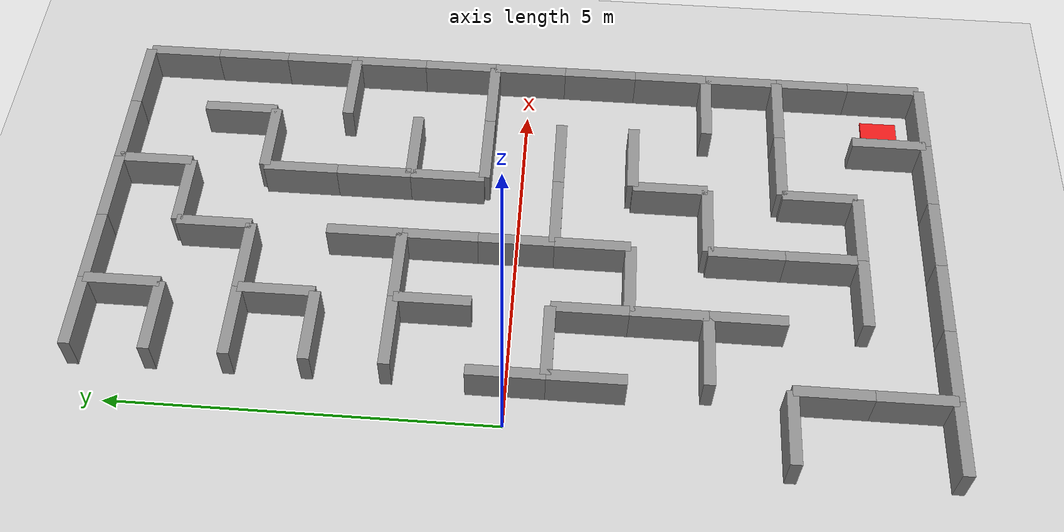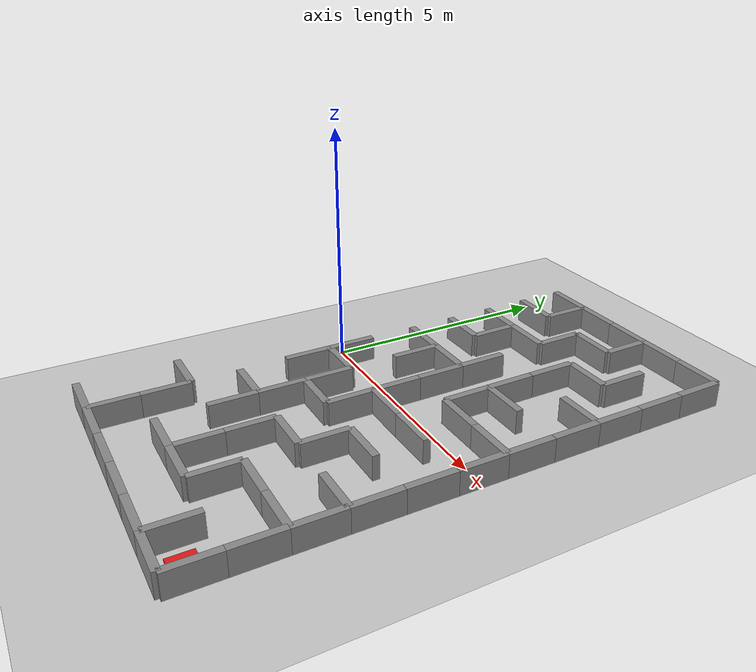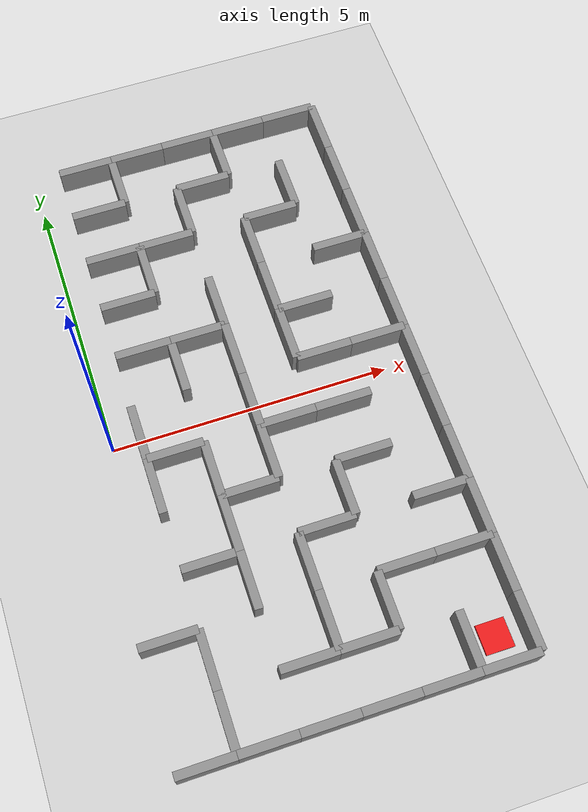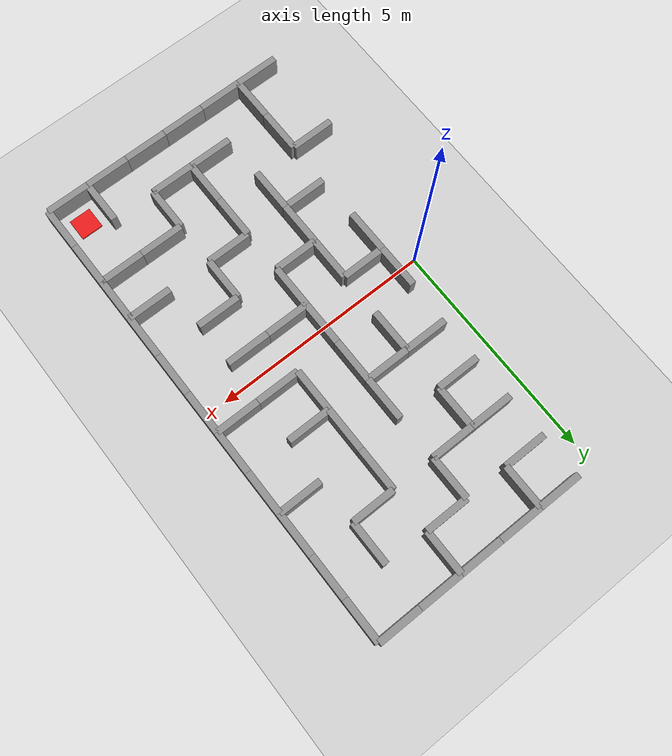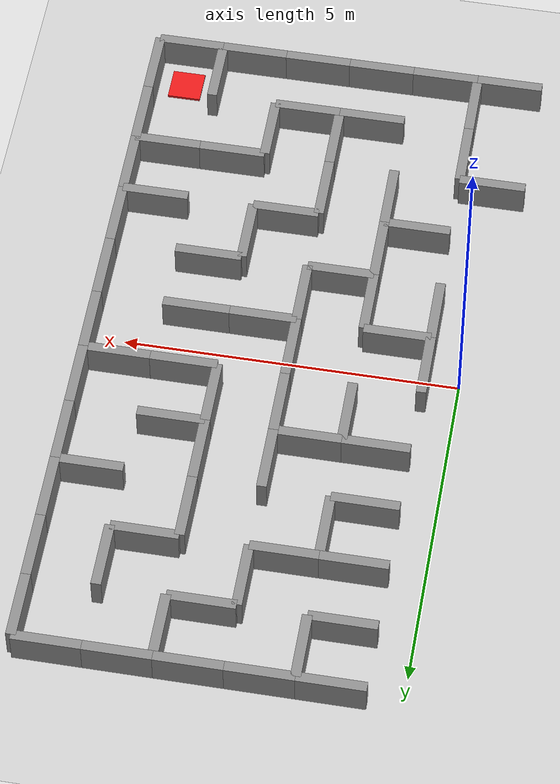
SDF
<sdf version="1.6">
 <world name="maze_world">
  <include><uri>model://ground_plane</uri></include>
  <include><uri>model://sun</uri></include>
  <model name="hw_0_6">
   <static>true</static>
   <pose>1.0000 5.5000 0.2500 0 0 0.0000</pose>
   <link name="link">
    <collision name="col">
     <geometry><box><size>1.0000 0.15 0.5</size></box></geometry>
     <surface><friction><ode><mu>0.8</mu><mu2>0.8</mu2></ode></friction></surface>
    </collision>
    <visual name="vis">
     <geometry><box><size>1.0000 0.15 0.5</size></box></geometry>
     <material><ambient>0.55 0.55 0.55 1</ambient><diffuse>0.55 0.55 0.55 1</diffuse></material>
    </visual>
   </link>
  </model>
  <model name="hw_0_7">
   <static>true</static>
   <pose>2.0000 5.5000 0.2500 0 0 0.0000</pose>
   <link name="link">
    <collision name="col">
     <geometry><box><size>1.0000 0.15 0.5</size></box></geometry>
     <surface><friction><ode><mu>0.8</mu><mu2>0.8</mu2></ode></friction></surface>
    </collision>
    <visual name="vis">
     <geometry><box><size>1.0000 0.15 0.5</size></box></geometry>
     <material><ambient>0.55 0.55 0.55 1</ambient><diffuse>0.55 0.55 0.55 1</diffuse></material>
    </visual>
   </link>
  </model>
  <model name="hw_0_8">
   <static>true</static>
   <pose>3.0000 5.5000 0.2500 0 0 0.0000</pose>
   <link name="link">
    <collision name="col">
     <geometry><box><size>1.0000 0.15 0.5</size></box></geometry>
     <surface><friction><ode><mu>0.8</mu><mu2>0.8</mu2></ode></friction></surface>
    </collision>
    <visual name="vis">
     <geometry><box><size>1.0000 0.15 0.5</size></box></geometry>
     <material><ambient>0.55 0.55 0.55 1</ambient><diffuse>0.55 0.55 0.55 1</diffuse></material>
    </visual>
   </link>
  </model>
  <model name="hw_0_9">
   <static>true</static>
   <pose>4.0000 5.5000 0.2500 0 0 0.0000</pose>
   <link name="link">
    <collision name="col">
     <geometry><box><size>1.0000 0.15 0.5</size></box></geometry>
     <surface><friction><ode><mu>0.8</mu><mu2>0.8</mu2></ode></friction></surface>
    </collision>
    <visual name="vis">
     <geometry><box><size>1.0000 0.15 0.5</size></box></geometry>
     <material><ambient>0.55 0.55 0.55 1</ambient><diffuse>0.55 0.55 0.55 1</diffuse></material>
    </visual>
   </link>
  </model>
  <model name="hw_0_10">
   <static>true</static>
   <pose>5.0000 5.5000 0.2500 0 0 0.0000</pose>
   <link name="link">
    <collision name="col">
     <geometry><box><size>1.0000 0.15 0.5</size></box></geometry>
     <surface><friction><ode><mu>0.8</mu><mu2>0.8</mu2></ode></friction></surface>
    </collision>
    <visual name="vis">
     <geometry><box><size>1.0000 0.15 0.5</size></box></geometry>
     <material><ambient>0.55 0.55 0.55 1</ambient><diffuse>0.55 0.55 0.55 1</diffuse></material>
    </visual>
   </link>
  </model>
  <model name="hw_1_6">
   <static>true</static>
   <pose>1.0000 4.5000 0.2500 0 0 0.0000</pose>
   <link name="link">
    <collision name="col">
     <geometry><box><size>1.0000 0.15 0.5</size></box></geometry>
     <surface><friction><ode><mu>0.8</mu><mu2>0.8</mu2></ode></friction></surface>
    </collision>
    <visual name="vis">
     <geometry><box><size>1.0000 0.15 0.5</size></box></geometry>
     <material><ambient>0.55 0.55 0.55 1</ambient><diffuse>0.55 0.55 0.55 1</diffuse></material>
    </visual>
   </link>
  </model>
  <model name="hw_1_8">
   <static>true</static>
   <pose>3.0000 4.5000 0.2500 0 0 0.0000</pose>
   <link name="link">
    <collision name="col">
     <geometry><box><size>1.0000 0.15 0.5</size></box></geometry>
     <surface><friction><ode><mu>0.8</mu><mu2>0.8</mu2></ode></friction></surface>
    </collision>
    <visual name="vis">
     <geometry><box><size>1.0000 0.15 0.5</size></box></geometry>
     <material><ambient>0.55 0.55 0.55 1</ambient><diffuse>0.55 0.55 0.55 1</diffuse></material>
    </visual>
   </link>
  </model>
  <model name="hw_2_6">
   <static>true</static>
   <pose>1.0000 3.5000 0.2500 0 0 0.0000</pose>
   <link name="link">
    <collision name="col">
     <geometry><box><size>1.0000 0.15 0.5</size></box></geometry>
     <surface><friction><ode><mu>0.8</mu><mu2>0.8</mu2></ode></friction></surface>
    </collision>
    <visual name="vis">
     <geometry><box><size>1.0000 0.15 0.5</size></box></geometry>
     <material><ambient>0.55 0.55 0.55 1</ambient><diffuse>0.55 0.55 0.55 1</diffuse></material>
    </visual>
   </link>
  </model>
  <model name="hw_2_7">
   <static>true</static>
   <pose>2.0000 3.5000 0.2500 0 0 0.0000</pose>
   <link name="link">
    <collision name="col">
     <geometry><box><size>1.0000 0.15 0.5</size></box></geometry>
     <surface><friction><ode><mu>0.8</mu><mu2>0.8</mu2></ode></friction></surface>
    </collision>
    <visual name="vis">
     <geometry><box><size>1.0000 0.15 0.5</size></box></geometry>
     <material><ambient>0.55 0.55 0.55 1</ambient><diffuse>0.55 0.55 0.55 1</diffuse></material>
    </visual>
   </link>
  </model>
  <model name="hw_2_9">
   <static>true</static>
   <pose>4.0000 3.5000 0.2500 0 0 0.0000</pose>
   <link name="link">
    <collision name="col">
     <geometry><box><size>1.0000 0.15 0.5</size></box></geometry>
     <surface><friction><ode><mu>0.8</mu><mu2>0.8</mu2></ode></friction></surface>
    </collision>
    <visual name="vis">
     <geometry><box><size>1.0000 0.15 0.5</size></box></geometry>
     <material><ambient>0.55 0.55 0.55 1</ambient><diffuse>0.55 0.55 0.55 1</diffuse></material>
    </visual>
   </link>
  </model>
  <model name="hw_3_6">
   <static>true</static>
   <pose>1.0000 2.5000 0.2500 0 0 0.0000</pose>
   <link name="link">
    <collision name="col">
     <geometry><box><size>1.0000 0.15 0.5</size></box></geometry>
     <surface><friction><ode><mu>0.8</mu><mu2>0.8</mu2></ode></friction></surface>
    </collision>
    <visual name="vis">
     <geometry><box><size>1.0000 0.15 0.5</size></box></geometry>
     <material><ambient>0.55 0.55 0.55 1</ambient><diffuse>0.55 0.55 0.55 1</diffuse></material>
    </visual>
   </link>
  </model>
  <model name="hw_3_10">
   <static>true</static>
   <pose>5.0000 2.5000 0.2500 0 0 0.0000</pose>
   <link name="link">
    <collision name="col">
     <geometry><box><size>1.0000 0.15 0.5</size></box></geometry>
     <surface><friction><ode><mu>0.8</mu><mu2>0.8</mu2></ode></friction></surface>
    </collision>
    <visual name="vis">
     <geometry><box><size>1.0000 0.15 0.5</size></box></geometry>
     <material><ambient>0.55 0.55 0.55 1</ambient><diffuse>0.55 0.55 0.55 1</diffuse></material>
    </visual>
   </link>
  </model>
  <model name="hw_4_6">
   <static>true</static>
   <pose>1.0000 1.5000 0.2500 0 0 0.0000</pose>
   <link name="link">
    <collision name="col">
     <geometry><box><size>1.0000 0.15 0.5</size></box></geometry>
     <surface><friction><ode><mu>0.8</mu><mu2>0.8</mu2></ode></friction></surface>
    </collision>
    <visual name="vis">
     <geometry><box><size>1.0000 0.15 0.5</size></box></geometry>
     <material><ambient>0.55 0.55 0.55 1</ambient><diffuse>0.55 0.55 0.55 1</diffuse></material>
    </visual>
   </link>
  </model>
  <model name="hw_4_7">
   <static>true</static>
   <pose>2.0000 1.5000 0.2500 0 0 0.0000</pose>
   <link name="link">
    <collision name="col">
     <geometry><box><size>1.0000 0.15 0.5</size></box></geometry>
     <surface><friction><ode><mu>0.8</mu><mu2>0.8</mu2></ode></friction></surface>
    </collision>
    <visual name="vis">
     <geometry><box><size>1.0000 0.15 0.5</size></box></geometry>
     <material><ambient>0.55 0.55 0.55 1</ambient><diffuse>0.55 0.55 0.55 1</diffuse></material>
    </visual>
   </link>
  </model>
  <model name="hw_4_9">
   <static>true</static>
   <pose>4.0000 1.5000 0.2500 0 0 0.0000</pose>
   <link name="link">
    <collision name="col">
     <geometry><box><size>1.0000 0.15 0.5</size></box></geometry>
     <surface><friction><ode><mu>0.8</mu><mu2>0.8</mu2></ode></friction></surface>
    </collision>
    <visual name="vis">
     <geometry><box><size>1.0000 0.15 0.5</size></box></geometry>
     <material><ambient>0.55 0.55 0.55 1</ambient><diffuse>0.55 0.55 0.55 1</diffuse></material>
    </visual>
   </link>
  </model>
  <model name="hw_5_9">
   <static>true</static>
   <pose>4.0000 0.5000 0.2500 0 0 0.0000</pose>
   <link name="link">
    <collision name="col">
     <geometry><box><size>1.0000 0.15 0.5</size></box></geometry>
     <surface><friction><ode><mu>0.8</mu><mu2>0.8</mu2></ode></friction></surface>
    </collision>
    <visual name="vis">
     <geometry><box><size>1.0000 0.15 0.5</size></box></geometry>
     <material><ambient>0.55 0.55 0.55 1</ambient><diffuse>0.55 0.55 0.55 1</diffuse></material>
    </visual>
   </link>
  </model>
  <model name="hw_5_10">
   <static>true</static>
   <pose>5.0000 0.5000 0.2500 0 0 0.0000</pose>
   <link name="link">
    <collision name="col">
     <geometry><box><size>1.0000 0.15 0.5</size></box></geometry>
     <surface><friction><ode><mu>0.8</mu><mu2>0.8</mu2></ode></friction></surface>
    </collision>
    <visual name="vis">
     <geometry><box><size>1.0000 0.15 0.5</size></box></geometry>
     <material><ambient>0.55 0.55 0.55 1</ambient><diffuse>0.55 0.55 0.55 1</diffuse></material>
    </visual>
   </link>
  </model>
  <model name="hw_6_6">
   <static>true</static>
   <pose>1.0000 -0.5000 0.2500 0 0 0.0000</pose>
   <link name="link">
    <collision name="col">
     <geometry><box><size>1.0000 0.15 0.5</size></box></geometry>
     <surface><friction><ode><mu>0.8</mu><mu2>0.8</mu2></ode></friction></surface>
    </collision>
    <visual name="vis">
     <geometry><box><size>1.0000 0.15 0.5</size></box></geometry>
     <material><ambient>0.55 0.55 0.55 1</ambient><diffuse>0.55 0.55 0.55 1</diffuse></material>
    </visual>
   </link>
  </model>
  <model name="hw_6_8">
   <static>true</static>
   <pose>3.0000 -0.5000 0.2500 0 0 0.0000</pose>
   <link name="link">
    <collision name="col">
     <geometry><box><size>1.0000 0.15 0.5</size></box></geometry>
     <surface><friction><ode><mu>0.8</mu><mu2>0.8</mu2></ode></friction></surface>
    </collision>
    <visual name="vis">
     <geometry><box><size>1.0000 0.15 0.5</size></box></geometry>
     <material><ambient>0.55 0.55 0.55 1</ambient><diffuse>0.55 0.55 0.55 1</diffuse></material>
    </visual>
   </link>
  </model>
  <model name="hw_6_9">
   <static>true</static>
   <pose>4.0000 -0.5000 0.2500 0 0 0.0000</pose>
   <link name="link">
    <collision name="col">
     <geometry><box><size>1.0000 0.15 0.5</size></box></geometry>
     <surface><friction><ode><mu>0.8</mu><mu2>0.8</mu2></ode></friction></surface>
    </collision>
    <visual name="vis">
     <geometry><box><size>1.0000 0.15 0.5</size></box></geometry>
     <material><ambient>0.55 0.55 0.55 1</ambient><diffuse>0.55 0.55 0.55 1</diffuse></material>
    </visual>
   </link>
  </model>
  <model name="hw_7_7">
   <static>true</static>
   <pose>2.0000 -1.5000 0.2500 0 0 0.0000</pose>
   <link name="link">
    <collision name="col">
     <geometry><box><size>1.0000 0.15 0.5</size></box></geometry>
     <surface><friction><ode><mu>0.8</mu><mu2>0.8</mu2></ode></friction></surface>
    </collision>
    <visual name="vis">
     <geometry><box><size>1.0000 0.15 0.5</size></box></geometry>
     <material><ambient>0.55 0.55 0.55 1</ambient><diffuse>0.55 0.55 0.55 1</diffuse></material>
    </visual>
   </link>
  </model>
  <model name="hw_7_9">
   <static>true</static>
   <pose>4.0000 -1.5000 0.2500 0 0 0.0000</pose>
   <link name="link">
    <collision name="col">
     <geometry><box><size>1.0000 0.15 0.5</size></box></geometry>
     <surface><friction><ode><mu>0.8</mu><mu2>0.8</mu2></ode></friction></surface>
    </collision>
    <visual name="vis">
     <geometry><box><size>1.0000 0.15 0.5</size></box></geometry>
     <material><ambient>0.55 0.55 0.55 1</ambient><diffuse>0.55 0.55 0.55 1</diffuse></material>
    </visual>
   </link>
  </model>
  <model name="hw_8_6">
   <static>true</static>
   <pose>1.0000 -2.5000 0.2500 0 0 0.0000</pose>
   <link name="link">
    <collision name="col">
     <geometry><box><size>1.0000 0.15 0.5</size></box></geometry>
     <surface><friction><ode><mu>0.8</mu><mu2>0.8</mu2></ode></friction></surface>
    </collision>
    <visual name="vis">
     <geometry><box><size>1.0000 0.15 0.5</size></box></geometry>
     <material><ambient>0.55 0.55 0.55 1</ambient><diffuse>0.55 0.55 0.55 1</diffuse></material>
    </visual>
   </link>
  </model>
  <model name="hw_8_8">
   <static>true</static>
   <pose>3.0000 -2.5000 0.2500 0 0 0.0000</pose>
   <link name="link">
    <collision name="col">
     <geometry><box><size>1.0000 0.15 0.5</size></box></geometry>
     <surface><friction><ode><mu>0.8</mu><mu2>0.8</mu2></ode></friction></surface>
    </collision>
    <visual name="vis">
     <geometry><box><size>1.0000 0.15 0.5</size></box></geometry>
     <material><ambient>0.55 0.55 0.55 1</ambient><diffuse>0.55 0.55 0.55 1</diffuse></material>
    </visual>
   </link>
  </model>
  <model name="hw_8_10">
   <static>true</static>
   <pose>5.0000 -2.5000 0.2500 0 0 0.0000</pose>
   <link name="link">
    <collision name="col">
     <geometry><box><size>1.0000 0.15 0.5</size></box></geometry>
     <surface><friction><ode><mu>0.8</mu><mu2>0.8</mu2></ode></friction></surface>
    </collision>
    <visual name="vis">
     <geometry><box><size>1.0000 0.15 0.5</size></box></geometry>
     <material><ambient>0.55 0.55 0.55 1</ambient><diffuse>0.55 0.55 0.55 1</diffuse></material>
    </visual>
   </link>
  </model>
  <model name="hw_9_5">
   <static>true</static>
   <pose>0.0000 -3.5000 0.2500 0 0 0.0000</pose>
   <link name="link">
    <collision name="col">
     <geometry><box><size>1.0000 0.15 0.5</size></box></geometry>
     <surface><friction><ode><mu>0.8</mu><mu2>0.8</mu2></ode></friction></surface>
    </collision>
    <visual name="vis">
     <geometry><box><size>1.0000 0.15 0.5</size></box></geometry>
     <material><ambient>0.55 0.55 0.55 1</ambient><diffuse>0.55 0.55 0.55 1</diffuse></material>
    </visual>
   </link>
  </model>
  <model name="hw_9_9">
   <static>true</static>
   <pose>4.0000 -3.5000 0.2500 0 0 0.0000</pose>
   <link name="link">
    <collision name="col">
     <geometry><box><size>1.0000 0.15 0.5</size></box></geometry>
     <surface><friction><ode><mu>0.8</mu><mu2>0.8</mu2></ode></friction></surface>
    </collision>
    <visual name="vis">
     <geometry><box><size>1.0000 0.15 0.5</size></box></geometry>
     <material><ambient>0.55 0.55 0.55 1</ambient><diffuse>0.55 0.55 0.55 1</diffuse></material>
    </visual>
   </link>
  </model>
  <model name="hw_9_10">
   <static>true</static>
   <pose>5.0000 -3.5000 0.2500 0 0 0.0000</pose>
   <link name="link">
    <collision name="col">
     <geometry><box><size>1.0000 0.15 0.5</size></box></geometry>
     <surface><friction><ode><mu>0.8</mu><mu2>0.8</mu2></ode></friction></surface>
    </collision>
    <visual name="vis">
     <geometry><box><size>1.0000 0.15 0.5</size></box></geometry>
     <material><ambient>0.55 0.55 0.55 1</ambient><diffuse>0.55 0.55 0.55 1</diffuse></material>
    </visual>
   </link>
  </model>
  <model name="hw_10_7">
   <static>true</static>
   <pose>2.0000 -4.5000 0.2500 0 0 0.0000</pose>
   <link name="link">
    <collision name="col">
     <geometry><box><size>1.0000 0.15 0.5</size></box></geometry>
     <surface><friction><ode><mu>0.8</mu><mu2>0.8</mu2></ode></friction></surface>
    </collision>
    <visual name="vis">
     <geometry><box><size>1.0000 0.15 0.5</size></box></geometry>
     <material><ambient>0.55 0.55 0.55 1</ambient><diffuse>0.55 0.55 0.55 1</diffuse></material>
    </visual>
   </link>
  </model>
  <model name="hw_10_8">
   <static>true</static>
   <pose>3.0000 -4.5000 0.2500 0 0 0.0000</pose>
   <link name="link">
    <collision name="col">
     <geometry><box><size>1.0000 0.15 0.5</size></box></geometry>
     <surface><friction><ode><mu>0.8</mu><mu2>0.8</mu2></ode></friction></surface>
    </collision>
    <visual name="vis">
     <geometry><box><size>1.0000 0.15 0.5</size></box></geometry>
     <material><ambient>0.55 0.55 0.55 1</ambient><diffuse>0.55 0.55 0.55 1</diffuse></material>
    </visual>
   </link>
  </model>
  <model name="hw_11_5">
   <static>true</static>
   <pose>0.0000 -5.5000 0.2500 0 0 0.0000</pose>
   <link name="link">
    <collision name="col">
     <geometry><box><size>1.0000 0.15 0.5</size></box></geometry>
     <surface><friction><ode><mu>0.8</mu><mu2>0.8</mu2></ode></friction></surface>
    </collision>
    <visual name="vis">
     <geometry><box><size>1.0000 0.15 0.5</size></box></geometry>
     <material><ambient>0.55 0.55 0.55 1</ambient><diffuse>0.55 0.55 0.55 1</diffuse></material>
    </visual>
   </link>
  </model>
  <model name="hw_11_6">
   <static>true</static>
   <pose>1.0000 -5.5000 0.2500 0 0 0.0000</pose>
   <link name="link">
    <collision name="col">
     <geometry><box><size>1.0000 0.15 0.5</size></box></geometry>
     <surface><friction><ode><mu>0.8</mu><mu2>0.8</mu2></ode></friction></surface>
    </collision>
    <visual name="vis">
     <geometry><box><size>1.0000 0.15 0.5</size></box></geometry>
     <material><ambient>0.55 0.55 0.55 1</ambient><diffuse>0.55 0.55 0.55 1</diffuse></material>
    </visual>
   </link>
  </model>
  <model name="hw_11_7">
   <static>true</static>
   <pose>2.0000 -5.5000 0.2500 0 0 0.0000</pose>
   <link name="link">
    <collision name="col">
     <geometry><box><size>1.0000 0.15 0.5</size></box></geometry>
     <surface><friction><ode><mu>0.8</mu><mu2>0.8</mu2></ode></friction></surface>
    </collision>
    <visual name="vis">
     <geometry><box><size>1.0000 0.15 0.5</size></box></geometry>
     <material><ambient>0.55 0.55 0.55 1</ambient><diffuse>0.55 0.55 0.55 1</diffuse></material>
    </visual>
   </link>
  </model>
  <model name="hw_11_8">
   <static>true</static>
   <pose>3.0000 -5.5000 0.2500 0 0 0.0000</pose>
   <link name="link">
    <collision name="col">
     <geometry><box><size>1.0000 0.15 0.5</size></box></geometry>
     <surface><friction><ode><mu>0.8</mu><mu2>0.8</mu2></ode></friction></surface>
    </collision>
    <visual name="vis">
     <geometry><box><size>1.0000 0.15 0.5</size></box></geometry>
     <material><ambient>0.55 0.55 0.55 1</ambient><diffuse>0.55 0.55 0.55 1</diffuse></material>
    </visual>
   </link>
  </model>
  <model name="hw_11_9">
   <static>true</static>
   <pose>4.0000 -5.5000 0.2500 0 0 0.0000</pose>
   <link name="link">
    <collision name="col">
     <geometry><box><size>1.0000 0.15 0.5</size></box></geometry>
     <surface><friction><ode><mu>0.8</mu><mu2>0.8</mu2></ode></friction></surface>
    </collision>
    <visual name="vis">
     <geometry><box><size>1.0000 0.15 0.5</size></box></geometry>
     <material><ambient>0.55 0.55 0.55 1</ambient><diffuse>0.55 0.55 0.55 1</diffuse></material>
    </visual>
   </link>
  </model>
  <model name="hw_11_10">
   <static>true</static>
   <pose>5.0000 -5.5000 0.2500 0 0 0.0000</pose>
   <link name="link">
    <collision name="col">
     <geometry><box><size>1.0000 0.15 0.5</size></box></geometry>
     <surface><friction><ode><mu>0.8</mu><mu2>0.8</mu2></ode></friction></surface>
    </collision>
    <visual name="vis">
     <geometry><box><size>1.0000 0.15 0.5</size></box></geometry>
     <material><ambient>0.55 0.55 0.55 1</ambient><diffuse>0.55 0.55 0.55 1</diffuse></material>
    </visual>
   </link>
  </model>
  <model name="vw_6_5">
   <static>true</static>
   <pose>0.5000 0.0000 0.2500 0 0 1.5708</pose>
   <link name="link">
    <collision name="col">
     <geometry><box><size>1.0000 0.15 0.5</size></box></geometry>
     <surface><friction><ode><mu>0.8</mu><mu2>0.8</mu2></ode></friction></surface>
    </collision>
    <visual name="vis">
     <geometry><box><size>1.0000 0.15 0.5</size></box></geometry>
     <material><ambient>0.55 0.55 0.55 1</ambient><diffuse>0.55 0.55 0.55 1</diffuse></material>
    </visual>
   </link>
  </model>
  <model name="vw_6_6">
   <static>true</static>
   <pose>0.5000 -1.0000 0.2500 0 0 1.5708</pose>
   <link name="link">
    <collision name="col">
     <geometry><box><size>1.0000 0.15 0.5</size></box></geometry>
     <surface><friction><ode><mu>0.8</mu><mu2>0.8</mu2></ode></friction></surface>
    </collision>
    <visual name="vis">
     <geometry><box><size>1.0000 0.15 0.5</size></box></geometry>
     <material><ambient>0.55 0.55 0.55 1</ambient><diffuse>0.55 0.55 0.55 1</diffuse></material>
    </visual>
   </link>
  </model>
  <model name="vw_6_9">
   <static>true</static>
   <pose>0.5000 -4.0000 0.2500 0 0 1.5708</pose>
   <link name="link">
    <collision name="col">
     <geometry><box><size>1.0000 0.15 0.5</size></box></geometry>
     <surface><friction><ode><mu>0.8</mu><mu2>0.8</mu2></ode></friction></surface>
    </collision>
    <visual name="vis">
     <geometry><box><size>1.0000 0.15 0.5</size></box></geometry>
     <material><ambient>0.55 0.55 0.55 1</ambient><diffuse>0.55 0.55 0.55 1</diffuse></material>
    </visual>
   </link>
  </model>
  <model name="vw_6_10">
   <static>true</static>
   <pose>0.5000 -5.0000 0.2500 0 0 1.5708</pose>
   <link name="link">
    <collision name="col">
     <geometry><box><size>1.0000 0.15 0.5</size></box></geometry>
     <surface><friction><ode><mu>0.8</mu><mu2>0.8</mu2></ode></friction></surface>
    </collision>
    <visual name="vis">
     <geometry><box><size>1.0000 0.15 0.5</size></box></geometry>
     <material><ambient>0.55 0.55 0.55 1</ambient><diffuse>0.55 0.55 0.55 1</diffuse></material>
    </visual>
   </link>
  </model>
  <model name="vw_7_0">
   <static>true</static>
   <pose>1.5000 5.0000 0.2500 0 0 1.5708</pose>
   <link name="link">
    <collision name="col">
     <geometry><box><size>1.0000 0.15 0.5</size></box></geometry>
     <surface><friction><ode><mu>0.8</mu><mu2>0.8</mu2></ode></friction></surface>
    </collision>
    <visual name="vis">
     <geometry><box><size>1.0000 0.15 0.5</size></box></geometry>
     <material><ambient>0.55 0.55 0.55 1</ambient><diffuse>0.55 0.55 0.55 1</diffuse></material>
    </visual>
   </link>
  </model>
  <model name="vw_7_2">
   <static>true</static>
   <pose>1.5000 3.0000 0.2500 0 0 1.5708</pose>
   <link name="link">
    <collision name="col">
     <geometry><box><size>1.0000 0.15 0.5</size></box></geometry>
     <surface><friction><ode><mu>0.8</mu><mu2>0.8</mu2></ode></friction></surface>
    </collision>
    <visual name="vis">
     <geometry><box><size>1.0000 0.15 0.5</size></box></geometry>
     <material><ambient>0.55 0.55 0.55 1</ambient><diffuse>0.55 0.55 0.55 1</diffuse></material>
    </visual>
   </link>
  </model>
  <model name="vw_7_4">
   <static>true</static>
   <pose>1.5000 1.0000 0.2500 0 0 1.5708</pose>
   <link name="link">
    <collision name="col">
     <geometry><box><size>1.0000 0.15 0.5</size></box></geometry>
     <surface><friction><ode><mu>0.8</mu><mu2>0.8</mu2></ode></friction></surface>
    </collision>
    <visual name="vis">
     <geometry><box><size>1.0000 0.15 0.5</size></box></geometry>
     <material><ambient>0.55 0.55 0.55 1</ambient><diffuse>0.55 0.55 0.55 1</diffuse></material>
    </visual>
   </link>
  </model>
  <model name="vw_7_6">
   <static>true</static>
   <pose>1.5000 -1.0000 0.2500 0 0 1.5708</pose>
   <link name="link">
    <collision name="col">
     <geometry><box><size>1.0000 0.15 0.5</size></box></geometry>
     <surface><friction><ode><mu>0.8</mu><mu2>0.8</mu2></ode></friction></surface>
    </collision>
    <visual name="vis">
     <geometry><box><size>1.0000 0.15 0.5</size></box></geometry>
     <material><ambient>0.55 0.55 0.55 1</ambient><diffuse>0.55 0.55 0.55 1</diffuse></material>
    </visual>
   </link>
  </model>
  <model name="vw_7_7">
   <static>true</static>
   <pose>1.5000 -2.0000 0.2500 0 0 1.5708</pose>
   <link name="link">
    <collision name="col">
     <geometry><box><size>1.0000 0.15 0.5</size></box></geometry>
     <surface><friction><ode><mu>0.8</mu><mu2>0.8</mu2></ode></friction></surface>
    </collision>
    <visual name="vis">
     <geometry><box><size>1.0000 0.15 0.5</size></box></geometry>
     <material><ambient>0.55 0.55 0.55 1</ambient><diffuse>0.55 0.55 0.55 1</diffuse></material>
    </visual>
   </link>
  </model>
  <model name="vw_7_8">
   <static>true</static>
   <pose>1.5000 -3.0000 0.2500 0 0 1.5708</pose>
   <link name="link">
    <collision name="col">
     <geometry><box><size>1.0000 0.15 0.5</size></box></geometry>
     <surface><friction><ode><mu>0.8</mu><mu2>0.8</mu2></ode></friction></surface>
    </collision>
    <visual name="vis">
     <geometry><box><size>1.0000 0.15 0.5</size></box></geometry>
     <material><ambient>0.55 0.55 0.55 1</ambient><diffuse>0.55 0.55 0.55 1</diffuse></material>
    </visual>
   </link>
  </model>
  <model name="vw_8_1">
   <static>true</static>
   <pose>2.5000 4.0000 0.2500 0 0 1.5708</pose>
   <link name="link">
    <collision name="col">
     <geometry><box><size>1.0000 0.15 0.5</size></box></geometry>
     <surface><friction><ode><mu>0.8</mu><mu2>0.8</mu2></ode></friction></surface>
    </collision>
    <visual name="vis">
     <geometry><box><size>1.0000 0.15 0.5</size></box></geometry>
     <material><ambient>0.55 0.55 0.55 1</ambient><diffuse>0.55 0.55 0.55 1</diffuse></material>
    </visual>
   </link>
  </model>
  <model name="vw_8_3">
   <static>true</static>
   <pose>2.5000 2.0000 0.2500 0 0 1.5708</pose>
   <link name="link">
    <collision name="col">
     <geometry><box><size>1.0000 0.15 0.5</size></box></geometry>
     <surface><friction><ode><mu>0.8</mu><mu2>0.8</mu2></ode></friction></surface>
    </collision>
    <visual name="vis">
     <geometry><box><size>1.0000 0.15 0.5</size></box></geometry>
     <material><ambient>0.55 0.55 0.55 1</ambient><diffuse>0.55 0.55 0.55 1</diffuse></material>
    </visual>
   </link>
  </model>
  <model name="vw_8_4">
   <static>true</static>
   <pose>2.5000 1.0000 0.2500 0 0 1.5708</pose>
   <link name="link">
    <collision name="col">
     <geometry><box><size>1.0000 0.15 0.5</size></box></geometry>
     <surface><friction><ode><mu>0.8</mu><mu2>0.8</mu2></ode></friction></surface>
    </collision>
    <visual name="vis">
     <geometry><box><size>1.0000 0.15 0.5</size></box></geometry>
     <material><ambient>0.55 0.55 0.55 1</ambient><diffuse>0.55 0.55 0.55 1</diffuse></material>
    </visual>
   </link>
  </model>
  <model name="vw_8_5">
   <static>true</static>
   <pose>2.5000 0.0000 0.2500 0 0 1.5708</pose>
   <link name="link">
    <collision name="col">
     <geometry><box><size>1.0000 0.15 0.5</size></box></geometry>
     <surface><friction><ode><mu>0.8</mu><mu2>0.8</mu2></ode></friction></surface>
    </collision>
    <visual name="vis">
     <geometry><box><size>1.0000 0.15 0.5</size></box></geometry>
     <material><ambient>0.55 0.55 0.55 1</ambient><diffuse>0.55 0.55 0.55 1</diffuse></material>
    </visual>
   </link>
  </model>
  <model name="vw_8_6">
   <static>true</static>
   <pose>2.5000 -1.0000 0.2500 0 0 1.5708</pose>
   <link name="link">
    <collision name="col">
     <geometry><box><size>1.0000 0.15 0.5</size></box></geometry>
     <surface><friction><ode><mu>0.8</mu><mu2>0.8</mu2></ode></friction></surface>
    </collision>
    <visual name="vis">
     <geometry><box><size>1.0000 0.15 0.5</size></box></geometry>
     <material><ambient>0.55 0.55 0.55 1</ambient><diffuse>0.55 0.55 0.55 1</diffuse></material>
    </visual>
   </link>
  </model>
  <model name="vw_8_8">
   <static>true</static>
   <pose>2.5000 -3.0000 0.2500 0 0 1.5708</pose>
   <link name="link">
    <collision name="col">
     <geometry><box><size>1.0000 0.15 0.5</size></box></geometry>
     <surface><friction><ode><mu>0.8</mu><mu2>0.8</mu2></ode></friction></surface>
    </collision>
    <visual name="vis">
     <geometry><box><size>1.0000 0.15 0.5</size></box></geometry>
     <material><ambient>0.55 0.55 0.55 1</ambient><diffuse>0.55 0.55 0.55 1</diffuse></material>
    </visual>
   </link>
  </model>
  <model name="vw_8_9">
   <static>true</static>
   <pose>2.5000 -4.0000 0.2500 0 0 1.5708</pose>
   <link name="link">
    <collision name="col">
     <geometry><box><size>1.0000 0.15 0.5</size></box></geometry>
     <surface><friction><ode><mu>0.8</mu><mu2>0.8</mu2></ode></friction></surface>
    </collision>
    <visual name="vis">
     <geometry><box><size>1.0000 0.15 0.5</size></box></geometry>
     <material><ambient>0.55 0.55 0.55 1</ambient><diffuse>0.55 0.55 0.55 1</diffuse></material>
    </visual>
   </link>
  </model>
  <model name="vw_9_0">
   <static>true</static>
   <pose>3.5000 5.0000 0.2500 0 0 1.5708</pose>
   <link name="link">
    <collision name="col">
     <geometry><box><size>1.0000 0.15 0.5</size></box></geometry>
     <surface><friction><ode><mu>0.8</mu><mu2>0.8</mu2></ode></friction></surface>
    </collision>
    <visual name="vis">
     <geometry><box><size>1.0000 0.15 0.5</size></box></geometry>
     <material><ambient>0.55 0.55 0.55 1</ambient><diffuse>0.55 0.55 0.55 1</diffuse></material>
    </visual>
   </link>
  </model>
  <model name="vw_9_2">
   <static>true</static>
   <pose>3.5000 3.0000 0.2500 0 0 1.5708</pose>
   <link name="link">
    <collision name="col">
     <geometry><box><size>1.0000 0.15 0.5</size></box></geometry>
     <surface><friction><ode><mu>0.8</mu><mu2>0.8</mu2></ode></friction></surface>
    </collision>
    <visual name="vis">
     <geometry><box><size>1.0000 0.15 0.5</size></box></geometry>
     <material><ambient>0.55 0.55 0.55 1</ambient><diffuse>0.55 0.55 0.55 1</diffuse></material>
    </visual>
   </link>
  </model>
  <model name="vw_9_3">
   <static>true</static>
   <pose>3.5000 2.0000 0.2500 0 0 1.5708</pose>
   <link name="link">
    <collision name="col">
     <geometry><box><size>1.0000 0.15 0.5</size></box></geometry>
     <surface><friction><ode><mu>0.8</mu><mu2>0.8</mu2></ode></friction></surface>
    </collision>
    <visual name="vis">
     <geometry><box><size>1.0000 0.15 0.5</size></box></geometry>
     <material><ambient>0.55 0.55 0.55 1</ambient><diffuse>0.55 0.55 0.55 1</diffuse></material>
    </visual>
   </link>
  </model>
  <model name="vw_9_4">
   <static>true</static>
   <pose>3.5000 1.0000 0.2500 0 0 1.5708</pose>
   <link name="link">
    <collision name="col">
     <geometry><box><size>1.0000 0.15 0.5</size></box></geometry>
     <surface><friction><ode><mu>0.8</mu><mu2>0.8</mu2></ode></friction></surface>
    </collision>
    <visual name="vis">
     <geometry><box><size>1.0000 0.15 0.5</size></box></geometry>
     <material><ambient>0.55 0.55 0.55 1</ambient><diffuse>0.55 0.55 0.55 1</diffuse></material>
    </visual>
   </link>
  </model>
  <model name="vw_9_7">
   <static>true</static>
   <pose>3.5000 -2.0000 0.2500 0 0 1.5708</pose>
   <link name="link">
    <collision name="col">
     <geometry><box><size>1.0000 0.15 0.5</size></box></geometry>
     <surface><friction><ode><mu>0.8</mu><mu2>0.8</mu2></ode></friction></surface>
    </collision>
    <visual name="vis">
     <geometry><box><size>1.0000 0.15 0.5</size></box></geometry>
     <material><ambient>0.55 0.55 0.55 1</ambient><diffuse>0.55 0.55 0.55 1</diffuse></material>
    </visual>
   </link>
  </model>
  <model name="vw_9_9">
   <static>true</static>
   <pose>3.5000 -4.0000 0.2500 0 0 1.5708</pose>
   <link name="link">
    <collision name="col">
     <geometry><box><size>1.0000 0.15 0.5</size></box></geometry>
     <surface><friction><ode><mu>0.8</mu><mu2>0.8</mu2></ode></friction></surface>
    </collision>
    <visual name="vis">
     <geometry><box><size>1.0000 0.15 0.5</size></box></geometry>
     <material><ambient>0.55 0.55 0.55 1</ambient><diffuse>0.55 0.55 0.55 1</diffuse></material>
    </visual>
   </link>
  </model>
  <model name="vw_10_1">
   <static>true</static>
   <pose>4.5000 4.0000 0.2500 0 0 1.5708</pose>
   <link name="link">
    <collision name="col">
     <geometry><box><size>1.0000 0.15 0.5</size></box></geometry>
     <surface><friction><ode><mu>0.8</mu><mu2>0.8</mu2></ode></friction></surface>
    </collision>
    <visual name="vis">
     <geometry><box><size>1.0000 0.15 0.5</size></box></geometry>
     <material><ambient>0.55 0.55 0.55 1</ambient><diffuse>0.55 0.55 0.55 1</diffuse></material>
    </visual>
   </link>
  </model>
  <model name="vw_10_10">
   <static>true</static>
   <pose>4.5000 -5.0000 0.2500 0 0 1.5708</pose>
   <link name="link">
    <collision name="col">
     <geometry><box><size>1.0000 0.15 0.5</size></box></geometry>
     <surface><friction><ode><mu>0.8</mu><mu2>0.8</mu2></ode></friction></surface>
    </collision>
    <visual name="vis">
     <geometry><box><size>1.0000 0.15 0.5</size></box></geometry>
     <material><ambient>0.55 0.55 0.55 1</ambient><diffuse>0.55 0.55 0.55 1</diffuse></material>
    </visual>
   </link>
  </model>
  <model name="vw_11_0">
   <static>true</static>
   <pose>5.5000 5.0000 0.2500 0 0 1.5708</pose>
   <link name="link">
    <collision name="col">
     <geometry><box><size>1.0000 0.15 0.5</size></box></geometry>
     <surface><friction><ode><mu>0.8</mu><mu2>0.8</mu2></ode></friction></surface>
    </collision>
    <visual name="vis">
     <geometry><box><size>1.0000 0.15 0.5</size></box></geometry>
     <material><ambient>0.55 0.55 0.55 1</ambient><diffuse>0.55 0.55 0.55 1</diffuse></material>
    </visual>
   </link>
  </model>
  <model name="vw_11_1">
   <static>true</static>
   <pose>5.5000 4.0000 0.2500 0 0 1.5708</pose>
   <link name="link">
    <collision name="col">
     <geometry><box><size>1.0000 0.15 0.5</size></box></geometry>
     <surface><friction><ode><mu>0.8</mu><mu2>0.8</mu2></ode></friction></surface>
    </collision>
    <visual name="vis">
     <geometry><box><size>1.0000 0.15 0.5</size></box></geometry>
     <material><ambient>0.55 0.55 0.55 1</ambient><diffuse>0.55 0.55 0.55 1</diffuse></material>
    </visual>
   </link>
  </model>
  <model name="vw_11_2">
   <static>true</static>
   <pose>5.5000 3.0000 0.2500 0 0 1.5708</pose>
   <link name="link">
    <collision name="col">
     <geometry><box><size>1.0000 0.15 0.5</size></box></geometry>
     <surface><friction><ode><mu>0.8</mu><mu2>0.8</mu2></ode></friction></surface>
    </collision>
    <visual name="vis">
     <geometry><box><size>1.0000 0.15 0.5</size></box></geometry>
     <material><ambient>0.55 0.55 0.55 1</ambient><diffuse>0.55 0.55 0.55 1</diffuse></material>
    </visual>
   </link>
  </model>
  <model name="vw_11_3">
   <static>true</static>
   <pose>5.5000 2.0000 0.2500 0 0 1.5708</pose>
   <link name="link">
    <collision name="col">
     <geometry><box><size>1.0000 0.15 0.5</size></box></geometry>
     <surface><friction><ode><mu>0.8</mu><mu2>0.8</mu2></ode></friction></surface>
    </collision>
    <visual name="vis">
     <geometry><box><size>1.0000 0.15 0.5</size></box></geometry>
     <material><ambient>0.55 0.55 0.55 1</ambient><diffuse>0.55 0.55 0.55 1</diffuse></material>
    </visual>
   </link>
  </model>
  <model name="vw_11_4">
   <static>true</static>
   <pose>5.5000 1.0000 0.2500 0 0 1.5708</pose>
   <link name="link">
    <collision name="col">
     <geometry><box><size>1.0000 0.15 0.5</size></box></geometry>
     <surface><friction><ode><mu>0.8</mu><mu2>0.8</mu2></ode></friction></surface>
    </collision>
    <visual name="vis">
     <geometry><box><size>1.0000 0.15 0.5</size></box></geometry>
     <material><ambient>0.55 0.55 0.55 1</ambient><diffuse>0.55 0.55 0.55 1</diffuse></material>
    </visual>
   </link>
  </model>
  <model name="vw_11_5">
   <static>true</static>
   <pose>5.5000 0.0000 0.2500 0 0 1.5708</pose>
   <link name="link">
    <collision name="col">
     <geometry><box><size>1.0000 0.15 0.5</size></box></geometry>
     <surface><friction><ode><mu>0.8</mu><mu2>0.8</mu2></ode></friction></surface>
    </collision>
    <visual name="vis">
     <geometry><box><size>1.0000 0.15 0.5</size></box></geometry>
     <material><ambient>0.55 0.55 0.55 1</ambient><diffuse>0.55 0.55 0.55 1</diffuse></material>
    </visual>
   </link>
  </model>
  <model name="vw_11_6">
   <static>true</static>
   <pose>5.5000 -1.0000 0.2500 0 0 1.5708</pose>
   <link name="link">
    <collision name="col">
     <geometry><box><size>1.0000 0.15 0.5</size></box></geometry>
     <surface><friction><ode><mu>0.8</mu><mu2>0.8</mu2></ode></friction></surface>
    </collision>
    <visual name="vis">
     <geometry><box><size>1.0000 0.15 0.5</size></box></geometry>
     <material><ambient>0.55 0.55 0.55 1</ambient><diffuse>0.55 0.55 0.55 1</diffuse></material>
    </visual>
   </link>
  </model>
  <model name="vw_11_7">
   <static>true</static>
   <pose>5.5000 -2.0000 0.2500 0 0 1.5708</pose>
   <link name="link">
    <collision name="col">
     <geometry><box><size>1.0000 0.15 0.5</size></box></geometry>
     <surface><friction><ode><mu>0.8</mu><mu2>0.8</mu2></ode></friction></surface>
    </collision>
    <visual name="vis">
     <geometry><box><size>1.0000 0.15 0.5</size></box></geometry>
     <material><ambient>0.55 0.55 0.55 1</ambient><diffuse>0.55 0.55 0.55 1</diffuse></material>
    </visual>
   </link>
  </model>
  <model name="vw_11_8">
   <static>true</static>
   <pose>5.5000 -3.0000 0.2500 0 0 1.5708</pose>
   <link name="link">
    <collision name="col">
     <geometry><box><size>1.0000 0.15 0.5</size></box></geometry>
     <surface><friction><ode><mu>0.8</mu><mu2>0.8</mu2></ode></friction></surface>
    </collision>
    <visual name="vis">
     <geometry><box><size>1.0000 0.15 0.5</size></box></geometry>
     <material><ambient>0.55 0.55 0.55 1</ambient><diffuse>0.55 0.55 0.55 1</diffuse></material>
    </visual>
   </link>
  </model>
  <model name="vw_11_9">
   <static>true</static>
   <pose>5.5000 -4.0000 0.2500 0 0 1.5708</pose>
   <link name="link">
    <collision name="col">
     <geometry><box><size>1.0000 0.15 0.5</size></box></geometry>
     <surface><friction><ode><mu>0.8</mu><mu2>0.8</mu2></ode></friction></surface>
    </collision>
    <visual name="vis">
     <geometry><box><size>1.0000 0.15 0.5</size></box></geometry>
     <material><ambient>0.55 0.55 0.55 1</ambient><diffuse>0.55 0.55 0.55 1</diffuse></material>
    </visual>
   </link>
  </model>
  <model name="vw_11_10">
   <static>true</static>
   <pose>5.5000 -5.0000 0.2500 0 0 1.5708</pose>
   <link name="link">
    <collision name="col">
     <geometry><box><size>1.0000 0.15 0.5</size></box></geometry>
     <surface><friction><ode><mu>0.8</mu><mu2>0.8</mu2></ode></friction></surface>
    </collision>
    <visual name="vis">
     <geometry><box><size>1.0000 0.15 0.5</size></box></geometry>
     <material><ambient>0.55 0.55 0.55 1</ambient><diffuse>0.55 0.55 0.55 1</diffuse></material>
    </visual>
   </link>
  </model>
  <model name="goal_marker">
   <static>true</static>
   <pose>5.0000 -5.0000 0.02 0 0 0</pose>
   <link name="link">
    <visual name="vis">
     <geometry><box><size>0.5 0.5 0.04</size></box></geometry>
     <material><ambient>0.9 0.1 0.1 1</ambient><diffuse>0.9 0.1 0.1 1</diffuse></material>
    </visual>
   </link>
  </model>
 </world>
</sdf>
